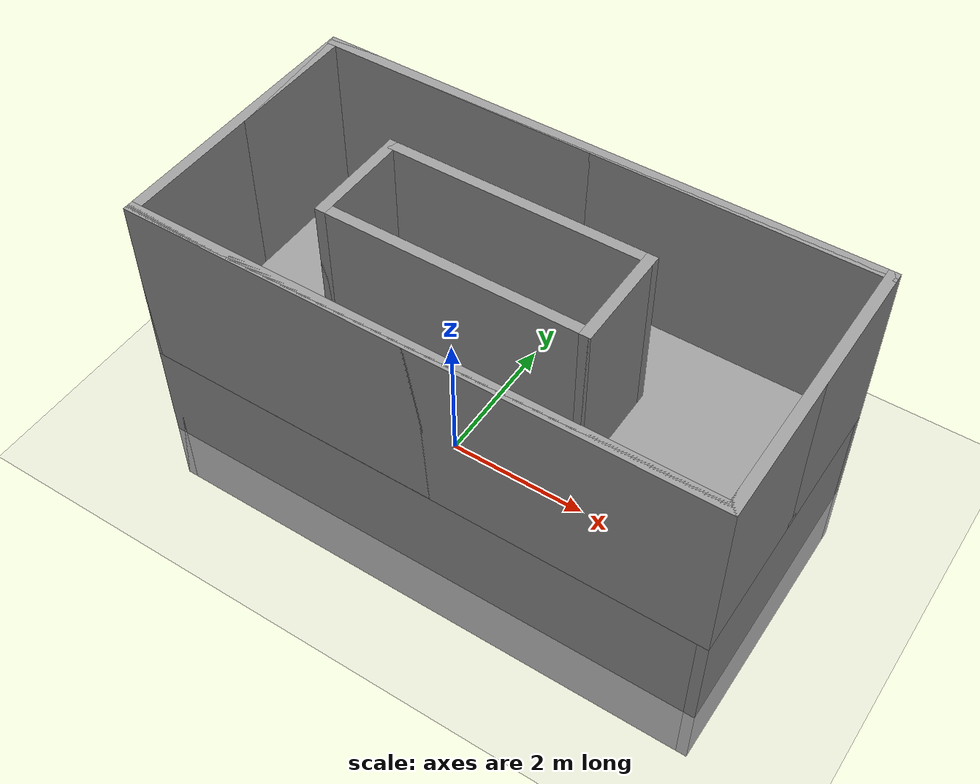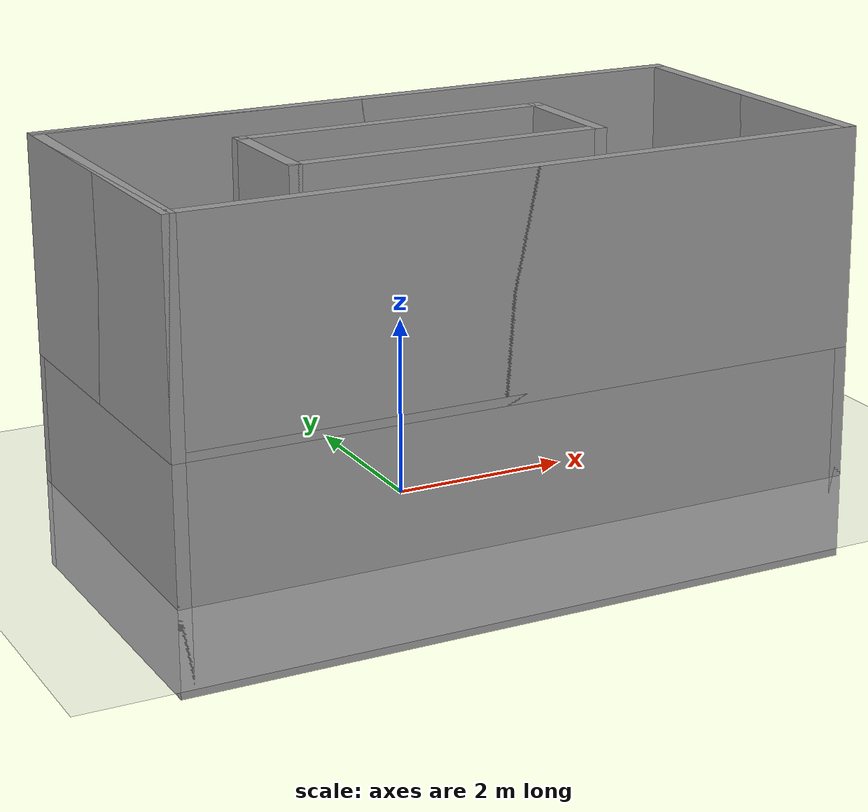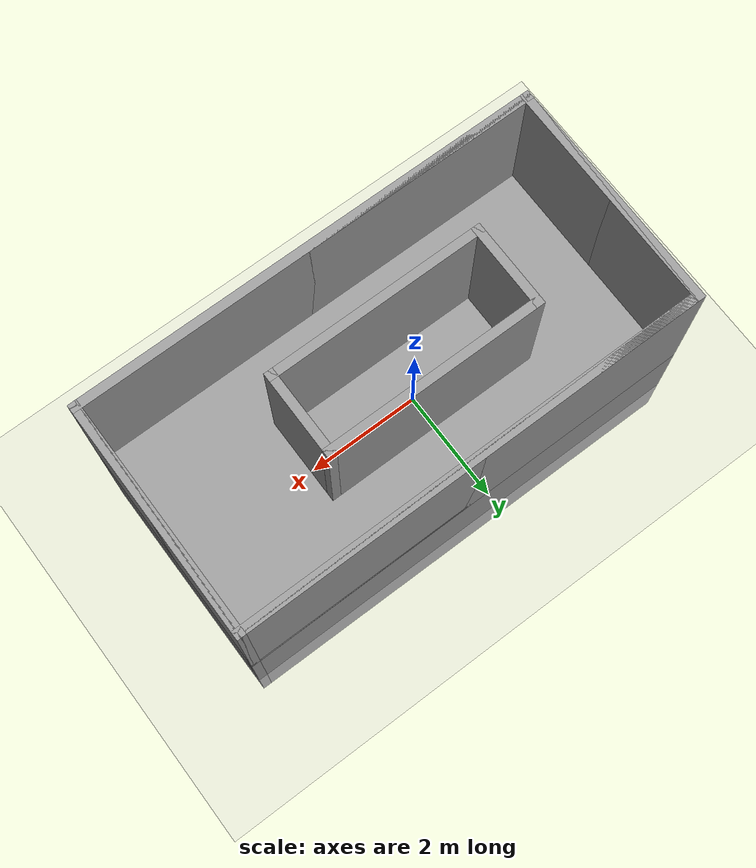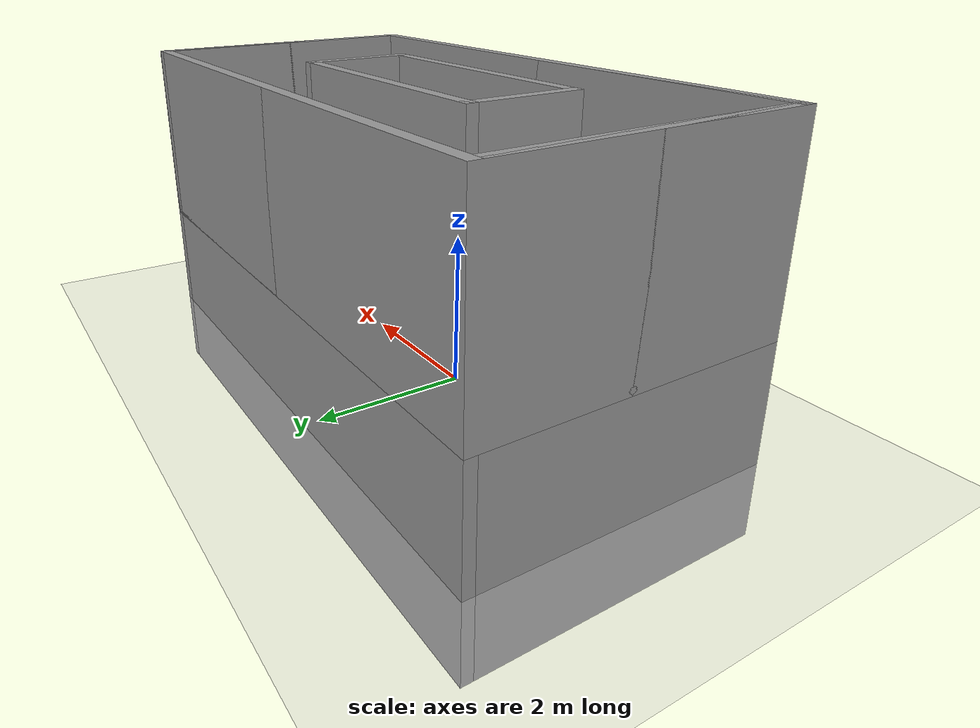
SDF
<sdf version="1.6">
 <world name="default">
  <light name="sun" type="directional">
   <pose>0 0 10 0 -0 0</pose>
   <diffuse>0.8 0.8 0.8 1</diffuse>
   <specular>0.1 0.1 0.1 1</specular>
   <attenuation>
    <range>1000</range>
    <constant>0.9</constant>
    <linear>0.01</linear>
    <quadratic>0.001</quadratic>
   </attenuation>
   <direction>-0.5 0.5 -1</direction>
  </light>
  <model name="ground_plane">
   <static>1</static>
   <link name="link">
    <collision name="collision">
     <geometry><plane><normal>0 0 1</normal><size>100 100</size></plane></geometry>
     <surface><friction><ode><mu>100</mu><mu2>50</mu2></ode></friction></surface>
    </collision>
    <visual name="visual">
     <cast_shadows>0</cast_shadows>
     <geometry><plane><normal>0 0 1</normal><size>100 100</size></plane></geometry>
     <material>
      <script><uri>file://media/materials/scripts/gazebo.material</uri><name>Gazebo/Grey</name></script>
     </material>
    </visual>
   </link>
  </model>
  <gravity>0 0 -9.8</gravity>
  <magnetic_field>6e-06 2.3e-05 -4.2e-05</magnetic_field>
  <atmosphere type="adiabatic"/>
  <physics name="default_physics" default="0" type="ode">
   <max_step_size>0.001</max_step_size>
   <real_time_factor>1</real_time_factor>
   <real_time_update_rate>1000</real_time_update_rate>
  </physics>
  <scene><ambient>0.4 0.4 0.4 1</ambient><background>0.7 0.7 0.7 1</background><shadows>1</shadows></scene>
  <spherical_coordinates>
   <surface_model>EARTH_WGS84</surface_model>
   <latitude_deg>0</latitude_deg>
   <longitude_deg>0</longitude_deg>
   <elevation>0</elevation>
   <heading_deg>0</heading_deg>
  </spherical_coordinates>
  <model name="Untitled_1">
   <pose>0.64197 0.185774 -1.00553 -0.011335 0 0</pose>
   <link name="Floor_1">
    <collision name="Floor_1_Collision">
     <geometry><box><size>8 4 0.1</size></box></geometry>
     <pose>0 0 0.05 0 -0 0</pose>
    </collision>
    <visual name="Floor_1_Visual">
     <pose>0 0 0.05 0 -0 0</pose>
     <geometry><box><size>8 4 0.1</size></box></geometry>
     <material>
      <script><uri>file://media/materials/scripts/gazebo.material</uri><name>Gazebo/Grey</name></script>
      <ambient>1 1 1 1</ambient>
     </material>
    </visual>
    <pose>0 0 2.5 0 -0 0</pose>
   </link>
   <link name="Wall_10">
    <collision name="Wall_10_Collision">
     <geometry><box><size>8 0.15 2.5</size></box></geometry>
     <pose>0 0 1.25 0 -0 0</pose>
    </collision>
    <visual name="Wall_10_Visual">
     <pose>0 0 1.25 0 -0 0</pose>
     <geometry><box><size>8 0.15 2.5</size></box></geometry>
     <material>
      <script><uri>file://media/materials/scripts/gazebo.material</uri><name>Gazebo/Grey</name></script>
      <ambient>1 1 1 1</ambient>
     </material>
    </visual>
    <pose>0 -1.925 0 0 -0 0</pose>
   </link>
   <link name="Wall_11">
    <collision name="Wall_11_Collision">
     <geometry><box><size>4 0.15 2.5</size></box></geometry>
     <pose>0 0 1.25 0 -0 0</pose>
    </collision>
    <visual name="Wall_11_Visual">
     <pose>0 0 1.25 0 -0 0</pose>
     <geometry><box><size>4 0.15 2.5</size></box></geometry>
     <material>
      <script><uri>file://media/materials/scripts/gazebo.material</uri><name>Gazebo/Grey</name></script>
      <ambient>1 1 1 1</ambient>
     </material>
    </visual>
    <pose>3.925 0 0 0 -0 1.5708</pose>
   </link>
   <link name="Wall_12">
    <collision name="Wall_12_Collision">
     <geometry><box><size>8 0.15 2.5</size></box></geometry>
     <pose>0 0 1.25 0 -0 0</pose>
    </collision>
    <visual name="Wall_12_Visual">
     <pose>0 0 1.25 0 -0 0</pose>
     <geometry><box><size>8 0.15 2.5</size></box></geometry>
     <material>
      <script><uri>file://media/materials/scripts/gazebo.material</uri><name>Gazebo/Grey</name></script>
      <ambient>1 1 1 1</ambient>
     </material>
    </visual>
    <pose>0 1.925 0 0 -0 3.14159</pose>
   </link>
   <link name="Wall_14">
    <collision name="Wall_14_Collision">
     <geometry><box><size>1.5 0.15 2.5</size></box></geometry>
     <pose>0 0 1.25 0 -0 0</pose>
    </collision>
    <visual name="Wall_14_Visual">
     <pose>0 0 1.25 0 -0 0</pose>
     <geometry><box><size>1.5 0.15 2.5</size></box></geometry>
     <material>
      <script><uri>file://media/materials/scripts/gazebo.material</uri><name>Gazebo/Grey</name></script>
      <ambient>1 1 1 1</ambient>
     </material>
    </visual>
    <pose>-2.075 -0.02 0 0 0 -1.5708</pose>
   </link>
   <link name="Wall_15">
    <collision name="Wall_15_Collision">
     <geometry><box><size>3.75 0.15 2.5</size></box></geometry>
     <pose>0 0 1.25 0 -0 0</pose>
    </collision>
    <visual name="Wall_15_Visual">
     <pose>0 0 1.25 0 -0 0</pose>
     <geometry><box><size>3.75 0.15 2.5</size></box></geometry>
     <material>
      <script><uri>file://media/materials/scripts/gazebo.material</uri><name>Gazebo/Grey</name></script>
      <ambient>1 1 1 1</ambient>
     </material>
    </visual>
    <pose>-0.275 -0.695 0 0 -0 0</pose>
   </link>
   <link name="Wall_16">
    <collision name="Wall_16_Collision">
     <geometry><box><size>1.5 0.15 2.5</size></box></geometry>
     <pose>0 0 1.25 0 -0 0</pose>
    </collision>
    <visual name="Wall_16_Visual">
     <pose>0 0 1.25 0 -0 0</pose>
     <geometry><box><size>1.5 0.15 2.5</size></box></geometry>
     <material>
      <script><uri>file://media/materials/scripts/gazebo.material</uri><name>Gazebo/Grey</name></script>
      <ambient>1 1 1 1</ambient>
     </material>
    </visual>
    <pose>1.525 -0.02 0 0 -0 1.5708</pose>
   </link>
   <link name="Wall_17">
    <collision name="Wall_17_Collision">
     <geometry><box><size>3.75 0.15 2.5</size></box></geometry>
     <pose>0 0 1.25 0 -0 0</pose>
    </collision>
    <visual name="Wall_17_Visual">
     <pose>0 0 1.25 0 -0 0</pose>
     <geometry><box><size>3.75 0.15 2.5</size></box></geometry>
     <material>
      <script><uri>file://media/materials/scripts/gazebo.material</uri><name>Gazebo/Grey</name></script>
      <ambient>1 1 1 1</ambient>
     </material>
    </visual>
    <pose>-0.275 0.655 0 0 -0 3.14159</pose>
   </link>
   <link name="Wall_19">
    <collision name="Wall_19_Collision">
     <geometry><box><size>4 0.15 2.5</size></box></geometry>
     <pose>0 0 1.25 0 -0 0</pose>
    </collision>
    <visual name="Wall_19_Visual">
     <pose>0 0 1.25 0 -0 0</pose>
     <geometry><box><size>4 0.15 2.5</size></box></geometry>
     <material>
      <script><uri>file://media/materials/scripts/gazebo.material</uri><name>Gazebo/Grey</name></script>
      <ambient>1 1 1 1</ambient>
     </material>
    </visual>
    <pose>-3.925 0 2.5 0 0 -1.5708</pose>
   </link>
   <link name="Wall_20">
    <collision name="Wall_20_Collision">
     <geometry><box><size>8 0.15 2.5</size></box></geometry>
     <pose>0 0 1.25 0 -0 0</pose>
    </collision>
    <visual name="Wall_20_Visual">
     <pose>0 0 1.25 0 -0 0</pose>
     <geometry><box><size>8 0.15 2.5</size></box></geometry>
     <material>
      <script><uri>file://media/materials/scripts/gazebo.material</uri><name>Gazebo/Grey</name></script>
      <ambient>1 1 1 1</ambient>
     </material>
    </visual>
    <pose>0 -1.925 2.5 0 -0 0</pose>
   </link>
   <link name="Wall_21">
    <collision name="Wall_21_Collision">
     <geometry><box><size>4 0.15 2.5</size></box></geometry>
     <pose>0 0 1.25 0 -0 0</pose>
    </collision>
    <visual name="Wall_21_Visual">
     <pose>0 0 1.25 0 -0 0</pose>
     <geometry><box><size>4 0.15 2.5</size></box></geometry>
     <material>
      <script><uri>file://media/materials/scripts/gazebo.material</uri><name>Gazebo/Grey</name></script>
      <ambient>1 1 1 1</ambient>
     </material>
    </visual>
    <pose>3.925 0 2.5 0 -0 1.5708</pose>
   </link>
   <link name="Wall_22">
    <collision name="Wall_22_Collision">
     <geometry><box><size>8 0.15 2.5</size></box></geometry>
     <pose>0 0 1.25 0 -0 0</pose>
    </collision>
    <visual name="Wall_22_Visual">
     <pose>0 0 1.25 0 -0 0</pose>
     <geometry><box><size>8 0.15 2.5</size></box></geometry>
     <material>
      <script><uri>file://media/materials/scripts/gazebo.material</uri><name>Gazebo/Grey</name></script>
      <ambient>1 1 1 1</ambient>
     </material>
    </visual>
    <pose>0 1.925 2.5 0 -0 3.14159</pose>
   </link>
   <link name="Wall_23">
    <collision name="Wall_23_Collision">
     <geometry><box><size>1.5 0.15 2.5</size></box></geometry>
     <pose>0 0 1.25 0 -0 0</pose>
    </collision>
    <visual name="Wall_23_Visual">
     <pose>0 0 1.25 0 -0 0</pose>
     <geometry><box><size>1.5 0.15 2.5</size></box></geometry>
     <material>
      <script><uri>file://media/materials/scripts/gazebo.material</uri><name>Gazebo/Grey</name></script>
      <ambient>1 1 1 1</ambient>
     </material>
    </visual>
    <pose>-2.075 -0.02 2.5 0 0 -1.5708</pose>
   </link>
   <link name="Wall_24">
    <collision name="Wall_24_Collision">
     <geometry><box><size>3.75 0.15 2.5</size></box></geometry>
     <pose>0 0 1.25 0 -0 0</pose>
    </collision>
    <visual name="Wall_24_Visual">
     <pose>0 0 1.25 0 -0 0</pose>
     <geometry><box><size>3.75 0.15 2.5</size></box></geometry>
     <material>
      <script><uri>file://media/materials/scripts/gazebo.material</uri><name>Gazebo/Grey</name></script>
      <ambient>1 1 1 1</ambient>
     </material>
    </visual>
    <pose>-0.275 -0.695 2.5 0 -0 0</pose>
   </link>
   <link name="Wall_25">
    <collision name="Wall_25_Collision">
     <geometry><box><size>1.5 0.15 2.5</size></box></geometry>
     <pose>0 0 1.25 0 -0 0</pose>
    </collision>
    <visual name="Wall_25_Visual">
     <pose>0 0 1.25 0 -0 0</pose>
     <geometry><box><size>1.5 0.15 2.5</size></box></geometry>
     <material>
      <script><uri>file://media/materials/scripts/gazebo.material</uri><name>Gazebo/Grey</name></script>
      <ambient>1 1 1 1</ambient>
     </material>
    </visual>
    <pose>1.525 -0.02 2.5 0 -0 1.5708</pose>
   </link>
   <link name="Wall_26">
    <collision name="Wall_26_Collision">
     <geometry><box><size>3.75 0.15 2.5</size></box></geometry>
     <pose>0 0 1.25 0 -0 0</pose>
    </collision>
    <visual name="Wall_26_Visual">
     <pose>0 0 1.25 0 -0 0</pose>
     <geometry><box><size>3.75 0.15 2.5</size></box></geometry>
     <material>
      <script><uri>file://media/materials/scripts/gazebo.material</uri><name>Gazebo/Grey</name></script>
      <ambient>1 1 1 1</ambient>
     </material>
    </visual>
    <pose>-0.275 0.655 2.5 0 -0 3.14159</pose>
   </link>
   <link name="Wall_28">
    <collision name="Wall_28_Collision">
     <geometry><box><size>8 0.15 2.5</size></box></geometry>
     <pose>0 0 1.25 0 -0 0</pose>
    </collision>
    <visual name="Wall_28_Visual">
     <pose>0 0 1.25 0 -0 0</pose>
     <geometry><box><size>8 0.15 2.5</size></box></geometry>
     <material>
      <script><uri>file://media/materials/scripts/gazebo.material</uri><name>Gazebo/Grey</name></script>
      <ambient>1 1 1 1</ambient>
     </material>
    </visual>
    <pose>0 1.925 2.5 0 -0 0</pose>
   </link>
   <link name="Wall_29">
    <collision name="Wall_29_Collision">
     <geometry><box><size>4 0.15 2.5</size></box></geometry>
     <pose>0 0 1.25 0 -0 0</pose>
    </collision>
    <visual name="Wall_29_Visual">
     <pose>0 0 1.25 0 -0 0</pose>
     <geometry><box><size>4 0.15 2.5</size></box></geometry>
     <material>
      <script><uri>file://media/materials/scripts/gazebo.material</uri><name>Gazebo/Grey</name></script>
      <ambient>1 1 1 1</ambient>
     </material>
    </visual>
    <pose>3.925 0 2.5 0 0 -1.5708</pose>
   </link>
   <link name="Wall_30">
    <collision name="Wall_30_Collision">
     <geometry><box><size>8 0.15 2.5</size></box></geometry>
     <pose>0 0 1.25 0 -0 0</pose>
    </collision>
    <visual name="Wall_30_Visual">
     <pose>0 0 1.25 0 -0 0</pose>
     <geometry><box><size>8 0.15 2.5</size></box></geometry>
     <material>
      <script><uri>file://media/materials/scripts/gazebo.material</uri><name>Gazebo/Grey</name></script>
      <ambient>1 1 1 1</ambient>
     </material>
    </visual>
    <pose>0 -1.925 2.5 0 -0 3.14159</pose>
   </link>
   <link name="Wall_31">
    <collision name="Wall_31_Collision">
     <geometry><box><size>4 0.15 2.5</size></box></geometry>
     <pose>0 0 1.25 0 -0 0</pose>
    </collision>
    <visual name="Wall_31_Visual">
     <pose>0 0 1.25 0 -0 0</pose>
     <geometry><box><size>4 0.15 2.5</size></box></geometry>
     <material>
      <script><uri>file://media/materials/scripts/gazebo.material</uri><name>Gazebo/Grey</name></script>
      <ambient>1 1 1 1</ambient>
     </material>
    </visual>
    <pose>-3.925 0 2.5 0 -0 1.5708</pose>
   </link>
   <link name="Wall_9">
    <collision name="Wall_9_Collision">
     <geometry><box><size>4 0.15 2.5</size></box></geometry>
     <pose>0 0 1.25 0 -0 0</pose>
    </collision>
    <visual name="Wall_9_Visual">
     <pose>0 0 1.25 0 -0 0</pose>
     <geometry><box><size>4 0.15 2.5</size></box></geometry>
     <material>
      <script><uri>file://media/materials/scripts/gazebo.material</uri><name>Gazebo/Grey</name></script>
      <ambient>1 1 1 1</ambient>
     </material>
    </visual>
    <pose>-3.925 0 0 0 0 -1.5708</pose>
   </link>
   <static>1</static>
  </model>
 </world>
</sdf>
